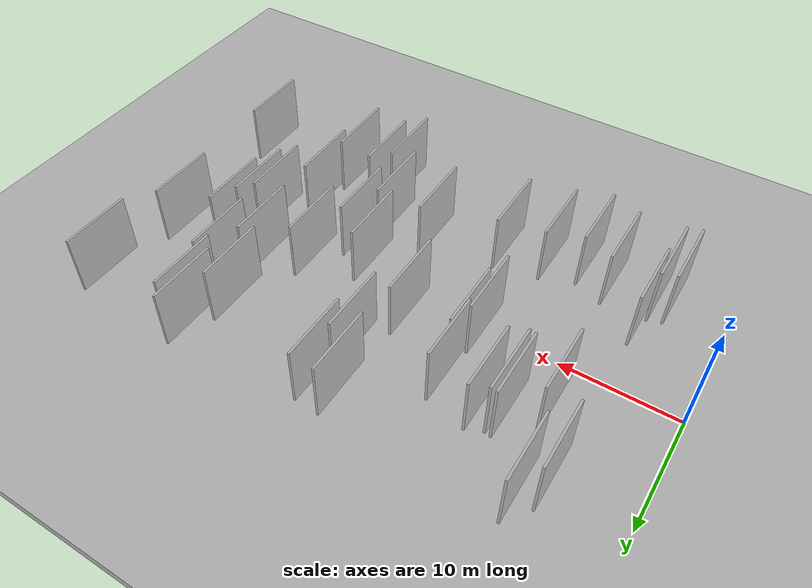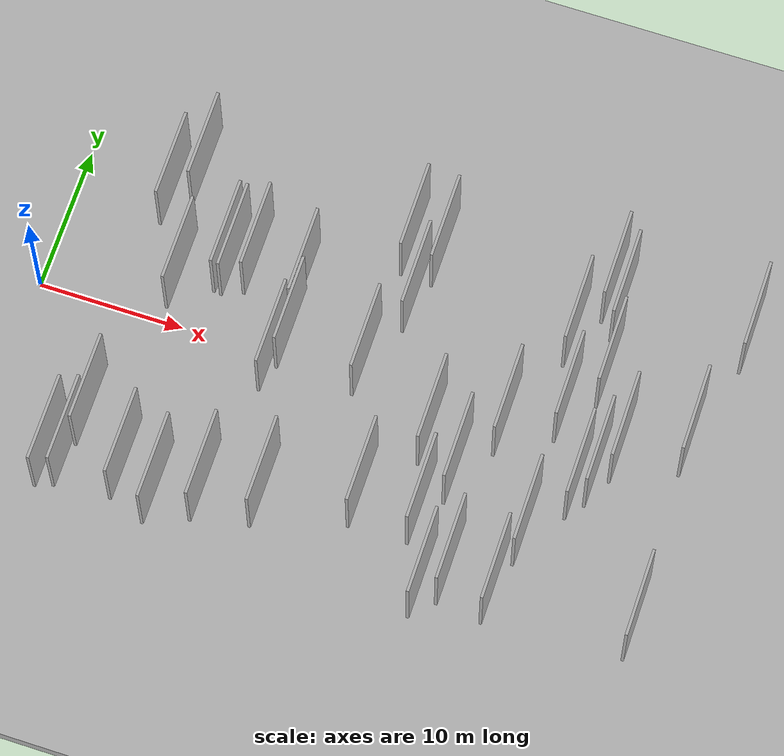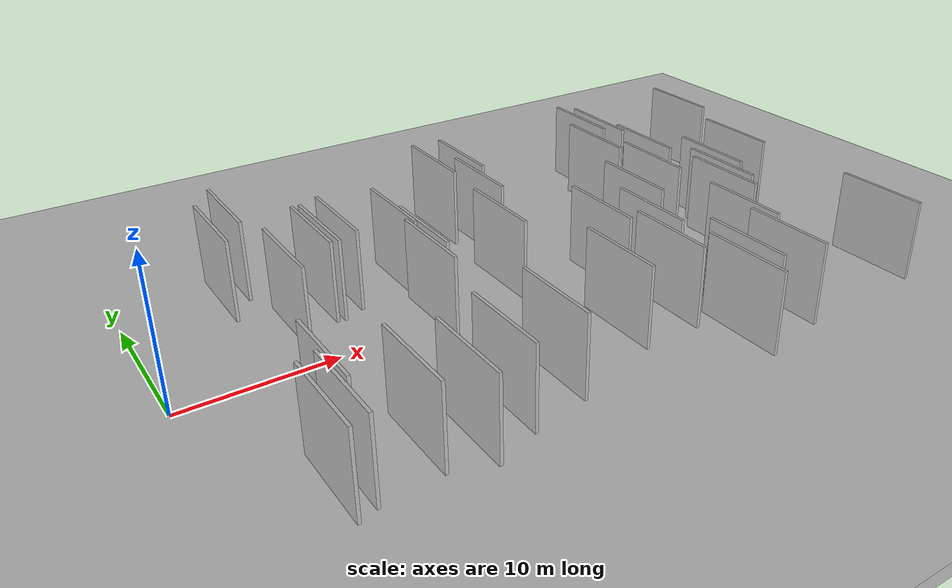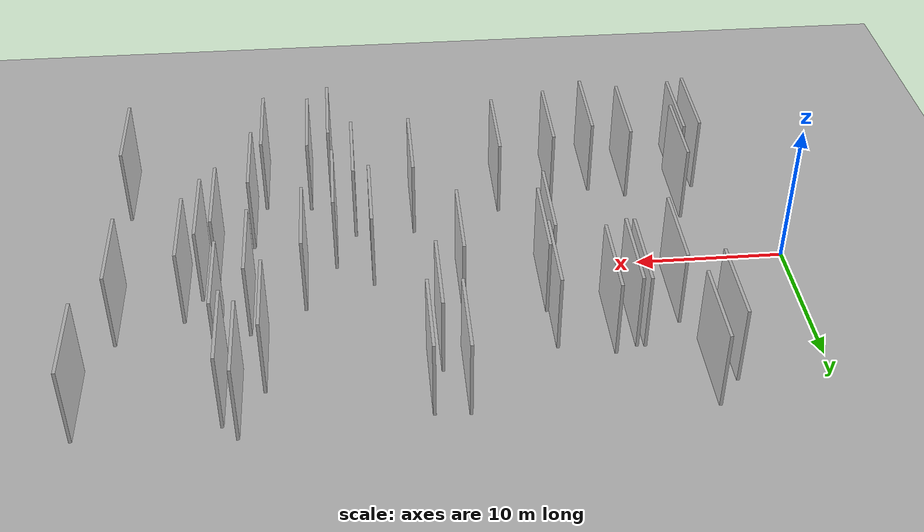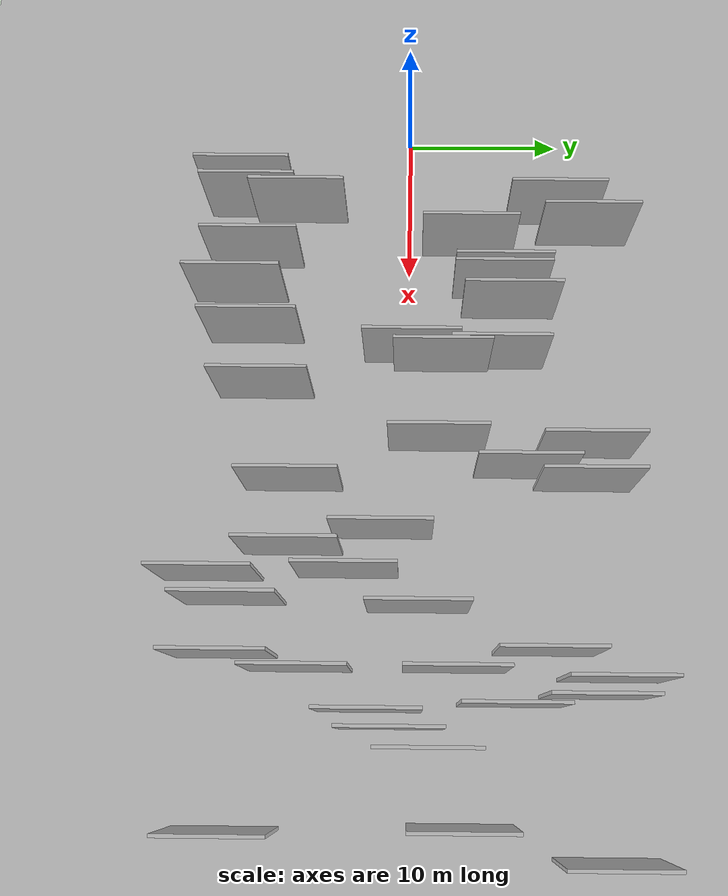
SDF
<?xml version="1.0" encoding="utf-8"?>

<sdf version="1.6">

   <world name="default">

      <gui fullscreen="0">

         <camera name="user_camera">

            <pose>-15 0 4.57585 0 0 0</pose>

            <view_controller>orbit</view_controller>

         </camera>

      </gui>

      <scene>

         <sky>

           <clouds>

             <speed>12</speed>

           </clouds>

         </sky>

         <ambient>0.4 0.4 0.4 1</ambient>

         <background>0.7 0.7 0.7 1</background>

         <shadows>1</shadows>

      </scene>

      <gravity>0 0 -9.8066</gravity>

      <magnetic_field>6e-06 2.3e-05 -4.2e-05</magnetic_field>

      <physics default="0" name="default_physics" type="ode">

         <ode>

            <solver>

               <type>quick</type>

               <iters>10</iters>

               <sor>1.0</sor>

               <use_dynamic_moi_rescaling>0</use_dynamic_moi_rescaling>

            </solver>

            <constraints>

               <cfm>0</cfm>

               <erp>0.2</erp>

               <contact_max_correcting_vel>100</contact_max_correcting_vel>

               <contact_surface_layer>0.001</contact_surface_layer>

            </constraints>

         </ode>

         <max_step_size>0.004</max_step_size>

         <real_time_factor>1</real_time_factor>

         <real_time_update_rate>250</real_time_update_rate>

      </physics>

      <light name="sun" type="directional">

         <cast_shadows>1</cast_shadows>

         <pose>0 0 10 0 0 0</pose>

         <diffuse>0.8 0.8 0.8 1</diffuse>

         <specular>0.2 0.2 0.2 1</specular>

         <attenuation>

            <range>1000</range>

            <constant>0.9</constant>

            <linear>0.01</linear>

            <quadratic>0.001</quadratic>

         </attenuation>

         <direction>-0.5 0.1 -0.9</direction>

      </light>

      <include>

         <name>ground_plane_1</name>

         <uri>model://HANNAS_ground_plane</uri>

         <pose>0 0 0  0 0 0</pose>

      </include>

      <include>

         <name>ground_plane_2</name>

         <uri>model://HANNAS_ground_plane</uri>

         <pose>100 0 0  0 0 0</pose>

      </include>

      <model name="HANNAS_wall_1">

         <static>1</static>

         <pose frame="">44.2414 3.1361 0.0 0.000000 0.000000 1.570796</pose>

         <link name="link">

            <pose frame="">0 0 3.00 0 0 0</pose>

            <collision name="collision">

               <geometry>

                  <box>

                     <size>6.00 0.2 6.00</size>

                  </box>

               </geometry>

               <max_contacts>10</max_contacts>

               <surface>

                  <contact>

                     <ode/>

                  </contact>

                  <bounce/>

                  <friction>

                     <torsional>

                        <ode/>

                     </torsional>

                     <ode/>

                  </friction>

               </surface>

            </collision>

            <visual name="visual">

               <cast_shadows>0</cast_shadows>

               <geometry>

                  <box>

                     <size>6.00 0.2 6.00</size>

                  </box>

               </geometry>

               <material>

                  <script>

                     <uri>model://HANNAS_wall/materials/scripts</uri>

                     <uri>model://HANNAS_wall/materials/textures</uri>

                     <name>vrc/HANNAS_wall</name>

                  </script>

               </material>

            </visual>

            <self_collide>0</self_collide>

            <enable_wind>0</enable_wind>

            <kinematic>0</kinematic>

         </link>

      </model>

      <model name="HANNAS_wall_2">

         <static>1</static>

         <pose frame="">14.9808 -9.7676 0.0 0.000000 0.000000 1.570796</pose>

         <link name="link">

            <pose frame="">0 0 3.00 0 0 0</pose>

            <collision name="collision">

               <geometry>

                  <box>

                     <size>6.00 0.2 6.00</size>

                  </box>

               </geometry>

               <max_contacts>10</max_contacts>

               <surface>

                  <contact>

                     <ode/>

                  </contact>

                  <bounce/>

                  <friction>

                     <torsional>

                        <ode/>

                     </torsional>

                     <ode/>

                  </friction>

               </surface>

            </collision>

            <visual name="visual">

               <cast_shadows>0</cast_shadows>

               <geometry>

                  <box>

                     <size>6.00 0.2 6.00</size>

                  </box>

               </geometry>

               <material>

                  <script>

                     <uri>model://HANNAS_wall/materials/scripts</uri>

                     <uri>model://HANNAS_wall/materials/textures</uri>

                     <name>vrc/HANNAS_wall</name>

                  </script>

               </material>

            </visual>

            <self_collide>0</self_collide>

            <enable_wind>0</enable_wind>

            <kinematic>0</kinematic>

         </link>

      </model>

      <model name="HANNAS_wall_3">

         <static>1</static>

         <pose frame="">11.6981 5.8458 0.0 0.000000 0.000000 1.570796</pose>

         <link name="link">

            <pose frame="">0 0 3.00 0 0 0</pose>

            <collision name="collision">

               <geometry>

                  <box>

                     <size>6.00 0.2 6.00</size>

                  </box>

               </geometry>

               <max_contacts>10</max_contacts>

               <surface>

                  <contact>

                     <ode/>

                  </contact>

                  <bounce/>

                  <friction>

                     <torsional>

                        <ode/>

                     </torsional>

                     <ode/>

                  </friction>

               </surface>

            </collision>

            <visual name="visual">

               <cast_shadows>0</cast_shadows>

               <geometry>

                  <box>

                     <size>6.00 0.2 6.00</size>

                  </box>

               </geometry>

               <material>

                  <script>

                     <uri>model://HANNAS_wall/materials/scripts</uri>

                     <uri>model://HANNAS_wall/materials/textures</uri>

                     <name>vrc/HANNAS_wall</name>

                  </script>

               </material>

            </visual>

            <self_collide>0</self_collide>

            <enable_wind>0</enable_wind>

            <kinematic>0</kinematic>

         </link>

      </model>

      <model name="HANNAS_wall_4">

         <static>1</static>

         <pose frame="">32.3128 0.7063 0.0 0.000000 0.000000 1.570796</pose>

         <link name="link">

            <pose frame="">0 0 3.00 0 0 0</pose>

            <collision name="collision">

               <geometry>

                  <box>

                     <size>6.00 0.2 6.00</size>

                  </box>

               </geometry>

               <max_contacts>10</max_contacts>

               <surface>

                  <contact>

                     <ode/>

                  </contact>

                  <bounce/>

                  <friction>

                     <torsional>

                        <ode/>

                     </torsional>

                     <ode/>

                  </friction>

               </surface>

            </collision>

            <visual name="visual">

               <cast_shadows>0</cast_shadows>

               <geometry>

                  <box>

                     <size>6.00 0.2 6.00</size>

                  </box>

               </geometry>

               <material>

                  <script>

                     <uri>model://HANNAS_wall/materials/scripts</uri>

                     <uri>model://HANNAS_wall/materials/textures</uri>

                     <name>vrc/HANNAS_wall</name>

                  </script>

               </material>

            </visual>

            <self_collide>0</self_collide>

            <enable_wind>0</enable_wind>

            <kinematic>0</kinematic>

         </link>

      </model>

      <model name="HANNAS_wall_5">

         <static>1</static>

         <pose frame="">39.0102 -0.8089 0.0 0.000000 0.000000 1.570796</pose>

         <link name="link">

            <pose frame="">0 0 3.00 0 0 0</pose>

            <collision name="collision">

               <geometry>

                  <box>

                     <size>6.00 0.2 6.00</size>

                  </box>

               </geometry>

               <max_contacts>10</max_contacts>

               <surface>

                  <contact>

                     <ode/>

                  </contact>

                  <bounce/>

                  <friction>

                     <torsional>

                        <ode/>

                     </torsional>

                     <ode/>

                  </friction>

               </surface>

            </collision>

            <visual name="visual">

               <cast_shadows>0</cast_shadows>

               <geometry>

                  <box>

                     <size>6.00 0.2 6.00</size>

                  </box>

               </geometry>

               <material>

                  <script>

                     <uri>model://HANNAS_wall/materials/scripts</uri>

                     <uri>model://HANNAS_wall/materials/textures</uri>

                     <name>vrc/HANNAS_wall</name>

                  </script>

               </material>

            </visual>

            <self_collide>0</self_collide>

            <enable_wind>0</enable_wind>

            <kinematic>0</kinematic>

         </link>

      </model>

      <model name="HANNAS_wall_6">

         <static>1</static>

         <pose frame="">16.8621 2.0941 0.0 0.000000 0.000000 1.570796</pose>

         <link name="link">

            <pose frame="">0 0 3.00 0 0 0</pose>

            <collision name="collision">

               <geometry>

                  <box>

                     <size>6.00 0.2 6.00</size>

                  </box>

               </geometry>

               <max_contacts>10</max_contacts>

               <surface>

                  <contact>

                     <ode/>

                  </contact>

                  <bounce/>

                  <friction>

                     <torsional>

                        <ode/>

                     </torsional>

                     <ode/>

                  </friction>

               </surface>

            </collision>

            <visual name="visual">

               <cast_shadows>0</cast_shadows>

               <geometry>

                  <box>

                     <size>6.00 0.2 6.00</size>

                  </box>

               </geometry>

               <material>

                  <script>

                     <uri>model://HANNAS_wall/materials/scripts</uri>

                     <uri>model://HANNAS_wall/materials/textures</uri>

                     <name>vrc/HANNAS_wall</name>

                  </script>

               </material>

            </visual>

            <self_collide>0</self_collide>

            <enable_wind>0</enable_wind>

            <kinematic>0</kinematic>

         </link>

      </model>

      <model name="HANNAS_wall_7">

         <static>1</static>

         <pose frame="">30.5004 -11.5803 0.0 0.000000 0.000000 1.570796</pose>

         <link name="link">

            <pose frame="">0 0 3.00 0 0 0</pose>

            <collision name="collision">

               <geometry>

                  <box>

                     <size>6.00 0.2 6.00</size>

                  </box>

               </geometry>

               <max_contacts>10</max_contacts>

               <surface>

                  <contact>

                     <ode/>

                  </contact>

                  <bounce/>

                  <friction>

                     <torsional>

                        <ode/>

                     </torsional>

                     <ode/>

                  </friction>

               </surface>

            </collision>

            <visual name="visual">

               <cast_shadows>0</cast_shadows>

               <geometry>

                  <box>

                     <size>6.00 0.2 6.00</size>

                  </box>

               </geometry>

               <material>

                  <script>

                     <uri>model://HANNAS_wall/materials/scripts</uri>

                     <uri>model://HANNAS_wall/materials/textures</uri>

                     <name>vrc/HANNAS_wall</name>

                  </script>

               </material>

            </visual>

            <self_collide>0</self_collide>

            <enable_wind>0</enable_wind>

            <kinematic>0</kinematic>

         </link>

      </model>

      <model name="HANNAS_wall_8">

         <static>1</static>

         <pose frame="">4.5797 -10.6767 0.0 0.000000 0.000000 1.570796</pose>

         <link name="link">

            <pose frame="">0 0 3.00 0 0 0</pose>

            <collision name="collision">

               <geometry>

                  <box>

                     <size>6.00 0.2 6.00</size>

                  </box>

               </geometry>

               <max_contacts>10</max_contacts>

               <surface>

                  <contact>

                     <ode/>

                  </contact>

                  <bounce/>

                  <friction>

                     <torsional>

                        <ode/>

                     </torsional>

                     <ode/>

                  </friction>

               </surface>

            </collision>

            <visual name="visual">

               <cast_shadows>0</cast_shadows>

               <geometry>

                  <box>

                     <size>6.00 0.2 6.00</size>

                  </box>

               </geometry>

               <material>

                  <script>

                     <uri>model://HANNAS_wall/materials/scripts</uri>

                     <uri>model://HANNAS_wall/materials/textures</uri>

                     <name>vrc/HANNAS_wall</name>

                  </script>

               </material>

            </visual>

            <self_collide>0</self_collide>

            <enable_wind>0</enable_wind>

            <kinematic>0</kinematic>

         </link>

      </model>

      <model name="HANNAS_wall_9">

         <static>1</static>

         <pose frame="">5.7513 -10.2870 0.0 0.000000 0.000000 1.570796</pose>

         <link name="link">

            <pose frame="">0 0 3.00 0 0 0</pose>

            <collision name="collision">

               <geometry>

                  <box>

                     <size>6.00 0.2 6.00</size>

                  </box>

               </geometry>

               <max_contacts>10</max_contacts>

               <surface>

                  <contact>

                     <ode/>

                  </contact>

                  <bounce/>

                  <friction>

                     <torsional>

                        <ode/>

                     </torsional>

                     <ode/>

                  </friction>

               </surface>

            </collision>

            <visual name="visual">

               <cast_shadows>0</cast_shadows>

               <geometry>

                  <box>

                     <size>6.00 0.2 6.00</size>

                  </box>

               </geometry>

               <material>

                  <script>

                     <uri>model://HANNAS_wall/materials/scripts</uri>

                     <uri>model://HANNAS_wall/materials/textures</uri>

                     <name>vrc/HANNAS_wall</name>

                  </script>

               </material>

            </visual>

            <self_collide>0</self_collide>

            <enable_wind>0</enable_wind>

            <kinematic>0</kinematic>

         </link>

      </model>

      <model name="HANNAS_wall_10">

         <static>1</static>

         <pose frame="">44.4853 -10.0042 0.0 0.000000 0.000000 1.570796</pose>

         <link name="link">

            <pose frame="">0 0 3.00 0 0 0</pose>

            <collision name="collision">

               <geometry>

                  <box>

                     <size>6.00 0.2 6.00</size>

                  </box>

               </geometry>

               <max_contacts>10</max_contacts>

               <surface>

                  <contact>

                     <ode/>

                  </contact>

                  <bounce/>

                  <friction>

                     <torsional>

                        <ode/>

                     </torsional>

                     <ode/>

                  </friction>

               </surface>

            </collision>

            <visual name="visual">

               <cast_shadows>0</cast_shadows>

               <geometry>

                  <box>

                     <size>6.00 0.2 6.00</size>

                  </box>

               </geometry>

               <material>

                  <script>

                     <uri>model://HANNAS_wall/materials/scripts</uri>

                     <uri>model://HANNAS_wall/materials/textures</uri>

                     <name>vrc/HANNAS_wall</name>

                  </script>

               </material>

            </visual>

            <self_collide>0</self_collide>

            <enable_wind>0</enable_wind>

            <kinematic>0</kinematic>

         </link>

      </model>

      <model name="HANNAS_wall_11">

         <static>1</static>

         <pose frame="">22.5764 10.9487 0.0 0.000000 0.000000 1.570796</pose>

         <link name="link">

            <pose frame="">0 0 3.00 0 0 0</pose>

            <collision name="collision">

               <geometry>

                  <box>

                     <size>6.00 0.2 6.00</size>

                  </box>

               </geometry>

               <max_contacts>10</max_contacts>

               <surface>

                  <contact>

                     <ode/>

                  </contact>

                  <bounce/>

                  <friction>

                     <torsional>

                        <ode/>

                     </torsional>

                     <ode/>

                  </friction>

               </surface>

            </collision>

            <visual name="visual">

               <cast_shadows>0</cast_shadows>

               <geometry>

                  <box>

                     <size>6.00 0.2 6.00</size>

                  </box>

               </geometry>

               <material>

                  <script>

                     <uri>model://HANNAS_wall/materials/scripts</uri>

                     <uri>model://HANNAS_wall/materials/textures</uri>

                     <name>vrc/HANNAS_wall</name>

                  </script>

               </material>

            </visual>

            <self_collide>0</self_collide>

            <enable_wind>0</enable_wind>

            <kinematic>0</kinematic>

         </link>

      </model>

      <model name="HANNAS_wall_12">

         <static>1</static>

         <pose frame="">24.8713 -6.9526 0.0 0.000000 0.000000 1.570796</pose>

         <link name="link">

            <pose frame="">0 0 3.00 0 0 0</pose>

            <collision name="collision">

               <geometry>

                  <box>

                     <size>6.00 0.2 6.00</size>

                  </box>

               </geometry>

               <max_contacts>10</max_contacts>

               <surface>

                  <contact>

                     <ode/>

                  </contact>

                  <bounce/>

                  <friction>

                     <torsional>

                        <ode/>

                     </torsional>

                     <ode/>

                  </friction>

               </surface>

            </collision>

            <visual name="visual">

               <cast_shadows>0</cast_shadows>

               <geometry>

                  <box>

                     <size>6.00 0.2 6.00</size>

                  </box>

               </geometry>

               <material>

                  <script>

                     <uri>model://HANNAS_wall/materials/scripts</uri>

                     <uri>model://HANNAS_wall/materials/textures</uri>

                     <name>vrc/HANNAS_wall</name>

                  </script>

               </material>

            </visual>

            <self_collide>0</self_collide>

            <enable_wind>0</enable_wind>

            <kinematic>0</kinematic>

         </link>

      </model>

      <model name="HANNAS_wall_13">

         <static>1</static>

         <pose frame="">45.9335 11.2779 0.0 0.000000 0.000000 1.570796</pose>

         <link name="link">

            <pose frame="">0 0 3.00 0 0 0</pose>

            <collision name="collision">

               <geometry>

                  <box>

                     <size>6.00 0.2 6.00</size>

                  </box>

               </geometry>

               <max_contacts>10</max_contacts>

               <surface>

                  <contact>

                     <ode/>

                  </contact>

                  <bounce/>

                  <friction>

                     <torsional>

                        <ode/>

                     </torsional>

                     <ode/>

                  </friction>

               </surface>

            </collision>

            <visual name="visual">

               <cast_shadows>0</cast_shadows>

               <geometry>

                  <box>

                     <size>6.00 0.2 6.00</size>

                  </box>

               </geometry>

               <material>

                  <script>

                     <uri>model://HANNAS_wall/materials/scripts</uri>

                     <uri>model://HANNAS_wall/materials/textures</uri>

                     <name>vrc/HANNAS_wall</name>

                  </script>

               </material>

            </visual>

            <self_collide>0</self_collide>

            <enable_wind>0</enable_wind>

            <kinematic>0</kinematic>

         </link>

      </model>

      <model name="HANNAS_wall_14">

         <static>1</static>

         <pose frame="">31.9454 -10.1639 0.0 0.000000 0.000000 1.570796</pose>

         <link name="link">

            <pose frame="">0 0 3.00 0 0 0</pose>

            <collision name="collision">

               <geometry>

                  <box>

                     <size>6.00 0.2 6.00</size>

                  </box>

               </geometry>

               <max_contacts>10</max_contacts>

               <surface>

                  <contact>

                     <ode/>

                  </contact>

                  <bounce/>

                  <friction>

                     <torsional>

                        <ode/>

                     </torsional>

                     <ode/>

                  </friction>

               </surface>

            </collision>

            <visual name="visual">

               <cast_shadows>0</cast_shadows>

               <geometry>

                  <box>

                     <size>6.00 0.2 6.00</size>

                  </box>

               </geometry>

               <material>

                  <script>

                     <uri>model://HANNAS_wall/materials/scripts</uri>

                     <uri>model://HANNAS_wall/materials/textures</uri>

                     <name>vrc/HANNAS_wall</name>

                  </script>

               </material>

            </visual>

            <self_collide>0</self_collide>

            <enable_wind>0</enable_wind>

            <kinematic>0</kinematic>

         </link>

      </model>

      <model name="HANNAS_wall_15">

         <static>1</static>

         <pose frame="">12.1028 -10.9018 0.0 0.000000 0.000000 1.570796</pose>

         <link name="link">

            <pose frame="">0 0 3.00 0 0 0</pose>

            <collision name="collision">

               <geometry>

                  <box>

                     <size>6.00 0.2 6.00</size>

                  </box>

               </geometry>

               <max_contacts>10</max_contacts>

               <surface>

                  <contact>

                     <ode/>

                  </contact>

                  <bounce/>

                  <friction>

                     <torsional>

                        <ode/>

                     </torsional>

                     <ode/>

                  </friction>

               </surface>

            </collision>

            <visual name="visual">

               <cast_shadows>0</cast_shadows>

               <geometry>

                  <box>

                     <size>6.00 0.2 6.00</size>

                  </box>

               </geometry>

               <material>

                  <script>

                     <uri>model://HANNAS_wall/materials/scripts</uri>

                     <uri>model://HANNAS_wall/materials/textures</uri>

                     <name>vrc/HANNAS_wall</name>

                  </script>

               </material>

            </visual>

            <self_collide>0</self_collide>

            <enable_wind>0</enable_wind>

            <kinematic>0</kinematic>

         </link>

      </model>

      <model name="HANNAS_wall_16">

         <static>1</static>

         <pose frame="">24.7455 10.8038 0.0 0.000000 0.000000 1.570796</pose>

         <link name="link">

            <pose frame="">0 0 3.00 0 0 0</pose>

            <collision name="collision">

               <geometry>

                  <box>

                     <size>6.00 0.2 6.00</size>

                  </box>

               </geometry>

               <max_contacts>10</max_contacts>

               <surface>

                  <contact>

                     <ode/>

                  </contact>

                  <bounce/>

                  <friction>

                     <torsional>

                        <ode/>

                     </torsional>

                     <ode/>

                  </friction>

               </surface>

            </collision>

            <visual name="visual">

               <cast_shadows>0</cast_shadows>

               <geometry>

                  <box>

                     <size>6.00 0.2 6.00</size>

                  </box>

               </geometry>

               <material>

                  <script>

                     <uri>model://HANNAS_wall/materials/scripts</uri>

                     <uri>model://HANNAS_wall/materials/textures</uri>

                     <name>vrc/HANNAS_wall</name>

                  </script>

               </material>

            </visual>

            <self_collide>0</self_collide>

            <enable_wind>0</enable_wind>

            <kinematic>0</kinematic>

         </link>

      </model>

      <model name="HANNAS_wall_17">

         <static>1</static>

         <pose frame="">27.8351 -1.4533 0.0 0.000000 0.000000 1.570796</pose>

         <link name="link">

            <pose frame="">0 0 3.00 0 0 0</pose>

            <collision name="collision">

               <geometry>

                  <box>

                     <size>6.00 0.2 6.00</size>

                  </box>

               </geometry>

               <max_contacts>10</max_contacts>

               <surface>

                  <contact>

                     <ode/>

                  </contact>

                  <bounce/>

                  <friction>

                     <torsional>

                        <ode/>

                     </torsional>

                     <ode/>

                  </friction>

               </surface>

            </collision>

            <visual name="visual">

               <cast_shadows>0</cast_shadows>

               <geometry>

                  <box>

                     <size>6.00 0.2 6.00</size>

                  </box>

               </geometry>

               <material>

                  <script>

                     <uri>model://HANNAS_wall/materials/scripts</uri>

                     <uri>model://HANNAS_wall/materials/textures</uri>

                     <name>vrc/HANNAS_wall</name>

                  </script>

               </material>

            </visual>

            <self_collide>0</self_collide>

            <enable_wind>0</enable_wind>

            <kinematic>0</kinematic>

         </link>

      </model>

      <model name="HANNAS_wall_18">

         <static>1</static>

         <pose frame="">28.8862 -6.8509 0.0 0.000000 0.000000 1.570796</pose>

         <link name="link">

            <pose frame="">0 0 3.00 0 0 0</pose>

            <collision name="collision">

               <geometry>

                  <box>

                     <size>6.00 0.2 6.00</size>

                  </box>

               </geometry>

               <max_contacts>10</max_contacts>

               <surface>

                  <contact>

                     <ode/>

                  </contact>

                  <bounce/>

                  <friction>

                     <torsional>

                        <ode/>

                     </torsional>

                     <ode/>

                  </friction>

               </surface>

            </collision>

            <visual name="visual">

               <cast_shadows>0</cast_shadows>

               <geometry>

                  <box>

                     <size>6.00 0.2 6.00</size>

                  </box>

               </geometry>

               <material>

                  <script>

                     <uri>model://HANNAS_wall/materials/scripts</uri>

                     <uri>model://HANNAS_wall/materials/textures</uri>

                     <name>vrc/HANNAS_wall</name>

                  </script>

               </material>

            </visual>

            <self_collide>0</self_collide>

            <enable_wind>0</enable_wind>

            <kinematic>0</kinematic>

         </link>

      </model>

      <model name="HANNAS_wall_19">

         <static>1</static>

         <pose frame="">30.2681 -3.4661 0.0 0.000000 0.000000 1.570796</pose>

         <link name="link">

            <pose frame="">0 0 3.00 0 0 0</pose>

            <collision name="collision">

               <geometry>

                  <box>

                     <size>6.00 0.2 6.00</size>

                  </box>

               </geometry>

               <max_contacts>10</max_contacts>

               <surface>

                  <contact>

                     <ode/>

                  </contact>

                  <bounce/>

                  <friction>

                     <torsional>

                        <ode/>

                     </torsional>

                     <ode/>

                  </friction>

               </surface>

            </collision>

            <visual name="visual">

               <cast_shadows>0</cast_shadows>

               <geometry>

                  <box>

                     <size>6.00 0.2 6.00</size>

                  </box>

               </geometry>

               <material>

                  <script>

                     <uri>model://HANNAS_wall/materials/scripts</uri>

                     <uri>model://HANNAS_wall/materials/textures</uri>

                     <name>vrc/HANNAS_wall</name>

                  </script>

               </material>

            </visual>

            <self_collide>0</self_collide>

            <enable_wind>0</enable_wind>

            <kinematic>0</kinematic>

         </link>

      </model>

      <model name="HANNAS_wall_20">

         <static>1</static>

         <pose frame="">9.5610 -9.9723 0.0 0.000000 0.000000 1.570796</pose>

         <link name="link">

            <pose frame="">0 0 3.00 0 0 0</pose>

            <collision name="collision">

               <geometry>

                  <box>

                     <size>6.00 0.2 6.00</size>

                  </box>

               </geometry>

               <max_contacts>10</max_contacts>

               <surface>

                  <contact>

                     <ode/>

                  </contact>

                  <bounce/>

                  <friction>

                     <torsional>

                        <ode/>

                     </torsional>

                     <ode/>

                  </friction>

               </surface>

            </collision>

            <visual name="visual">

               <cast_shadows>0</cast_shadows>

               <geometry>

                  <box>

                     <size>6.00 0.2 6.00</size>

                  </box>

               </geometry>

               <material>

                  <script>

                     <uri>model://HANNAS_wall/materials/scripts</uri>

                     <uri>model://HANNAS_wall/materials/textures</uri>

                     <name>vrc/HANNAS_wall</name>

                  </script>

               </material>

            </visual>

            <self_collide>0</self_collide>

            <enable_wind>0</enable_wind>

            <kinematic>0</kinematic>

         </link>

      </model>

      <model name="HANNAS_wall_21">

         <static>1</static>

         <pose frame="">34.7684 8.0979 0.0 0.000000 0.000000 1.570796</pose>

         <link name="link">

            <pose frame="">0 0 3.00 0 0 0</pose>

            <collision name="collision">

               <geometry>

                  <box>

                     <size>6.00 0.2 6.00</size>

                  </box>

               </geometry>

               <max_contacts>10</max_contacts>

               <surface>

                  <contact>

                     <ode/>

                  </contact>

                  <bounce/>

                  <friction>

                     <torsional>

                        <ode/>

                     </torsional>

                     <ode/>

                  </friction>

               </surface>

            </collision>

            <visual name="visual">

               <cast_shadows>0</cast_shadows>

               <geometry>

                  <box>

                     <size>6.00 0.2 6.00</size>

                  </box>

               </geometry>

               <material>

                  <script>

                     <uri>model://HANNAS_wall/materials/scripts</uri>

                     <uri>model://HANNAS_wall/materials/textures</uri>

                     <name>vrc/HANNAS_wall</name>

                  </script>

               </material>

            </visual>

            <self_collide>0</self_collide>

            <enable_wind>0</enable_wind>

            <kinematic>0</kinematic>

         </link>

      </model>

      <model name="HANNAS_wall_22">

         <static>1</static>

         <pose frame="">18.8014 -8.9508 0.0 0.000000 0.000000 1.570796</pose>

         <link name="link">

            <pose frame="">0 0 3.00 0 0 0</pose>

            <collision name="collision">

               <geometry>

                  <box>

                     <size>6.00 0.2 6.00</size>

                  </box>

               </geometry>

               <max_contacts>10</max_contacts>

               <surface>

                  <contact>

                     <ode/>

                  </contact>

                  <bounce/>

                  <friction>

                     <torsional>

                        <ode/>

                     </torsional>

                     <ode/>

                  </friction>

               </surface>

            </collision>

            <visual name="visual">

               <cast_shadows>0</cast_shadows>

               <geometry>

                  <box>

                     <size>6.00 0.2 6.00</size>

                  </box>

               </geometry>

               <material>

                  <script>

                     <uri>model://HANNAS_wall/materials/scripts</uri>

                     <uri>model://HANNAS_wall/materials/textures</uri>

                     <name>vrc/HANNAS_wall</name>

                  </script>

               </material>

            </visual>

            <self_collide>0</self_collide>

            <enable_wind>0</enable_wind>

            <kinematic>0</kinematic>

         </link>

      </model>

      <model name="HANNAS_wall_23">

         <static>1</static>

         <pose frame="">6.1531 9.4132 0.0 0.000000 0.000000 1.570796</pose>

         <link name="link">

            <pose frame="">0 0 3.00 0 0 0</pose>

            <collision name="collision">

               <geometry>

                  <box>

                     <size>6.00 0.2 6.00</size>

                  </box>

               </geometry>

               <max_contacts>10</max_contacts>

               <surface>

                  <contact>

                     <ode/>

                  </contact>

                  <bounce/>

                  <friction>

                     <torsional>

                        <ode/>

                     </torsional>

                     <ode/>

                  </friction>

               </surface>

            </collision>

            <visual name="visual">

               <cast_shadows>0</cast_shadows>

               <geometry>

                  <box>

                     <size>6.00 0.2 6.00</size>

                  </box>

               </geometry>

               <material>

                  <script>

                     <uri>model://HANNAS_wall/materials/scripts</uri>

                     <uri>model://HANNAS_wall/materials/textures</uri>

                     <name>vrc/HANNAS_wall</name>

                  </script>

               </material>

            </visual>

            <self_collide>0</self_collide>

            <enable_wind>0</enable_wind>

            <kinematic>0</kinematic>

         </link>

      </model>

      <model name="HANNAS_wall_24">

         <static>1</static>

         <pose frame="">13.0967 6.4128 0.0 0.000000 0.000000 1.570796</pose>

         <link name="link">

            <pose frame="">0 0 3.00 0 0 0</pose>

            <collision name="collision">

               <geometry>

                  <box>

                     <size>6.00 0.2 6.00</size>

                  </box>

               </geometry>

               <max_contacts>10</max_contacts>

               <surface>

                  <contact>

                     <ode/>

                  </contact>

                  <bounce/>

                  <friction>

                     <torsional>

                        <ode/>

                     </torsional>

                     <ode/>

                  </friction>

               </surface>

            </collision>

            <visual name="visual">

               <cast_shadows>0</cast_shadows>

               <geometry>

                  <box>

                     <size>6.00 0.2 6.00</size>

                  </box>

               </geometry>

               <material>

                  <script>

                     <uri>model://HANNAS_wall/materials/scripts</uri>

                     <uri>model://HANNAS_wall/materials/textures</uri>

                     <name>vrc/HANNAS_wall</name>

                  </script>

               </material>

            </visual>

            <self_collide>0</self_collide>

            <enable_wind>0</enable_wind>

            <kinematic>0</kinematic>

         </link>

      </model>

      <model name="HANNAS_wall_25">

         <static>1</static>

         <pose frame="">23.9436 7.1143 0.0 0.000000 0.000000 1.570796</pose>

         <link name="link">

            <pose frame="">0 0 3.00 0 0 0</pose>

            <collision name="collision">

               <geometry>

                  <box>

                     <size>6.00 0.2 6.00</size>

                  </box>

               </geometry>

               <max_contacts>10</max_contacts>

               <surface>

                  <contact>

                     <ode/>

                  </contact>

                  <bounce/>

                  <friction>

                     <torsional>

                        <ode/>

                     </torsional>

                     <ode/>

                  </friction>

               </surface>

            </collision>

            <visual name="visual">

               <cast_shadows>0</cast_shadows>

               <geometry>

                  <box>

                     <size>6.00 0.2 6.00</size>

                  </box>

               </geometry>

               <material>

                  <script>

                     <uri>model://HANNAS_wall/materials/scripts</uri>

                     <uri>model://HANNAS_wall/materials/textures</uri>

                     <name>vrc/HANNAS_wall</name>

                  </script>

               </material>

            </visual>

            <self_collide>0</self_collide>

            <enable_wind>0</enable_wind>

            <kinematic>0</kinematic>

         </link>

      </model>

      <model name="HANNAS_wall_26">

         <static>1</static>

         <pose frame="">16.2700 0.2062 0.0 0.000000 0.000000 1.570796</pose>

         <link name="link">

            <pose frame="">0 0 3.00 0 0 0</pose>

            <collision name="collision">

               <geometry>

                  <box>

                     <size>6.00 0.2 6.00</size>

                  </box>

               </geometry>

               <max_contacts>10</max_contacts>

               <surface>

                  <contact>

                     <ode/>

                  </contact>

                  <bounce/>

                  <friction>

                     <torsional>

                        <ode/>

                     </torsional>

                     <ode/>

                  </friction>

               </surface>

            </collision>

            <visual name="visual">

               <cast_shadows>0</cast_shadows>

               <geometry>

                  <box>

                     <size>6.00 0.2 6.00</size>

                  </box>

               </geometry>

               <material>

                  <script>

                     <uri>model://HANNAS_wall/materials/scripts</uri>

                     <uri>model://HANNAS_wall/materials/textures</uri>

                     <name>vrc/HANNAS_wall</name>

                  </script>

               </material>

            </visual>

            <self_collide>0</self_collide>

            <enable_wind>0</enable_wind>

            <kinematic>0</kinematic>

         </link>

      </model>

      <model name="HANNAS_wall_27">

         <static>1</static>

         <pose frame="">37.7063 6.0075 0.0 0.000000 0.000000 1.570796</pose>

         <link name="link">

            <pose frame="">0 0 3.00 0 0 0</pose>

            <collision name="collision">

               <geometry>

                  <box>

                     <size>6.00 0.2 6.00</size>

                  </box>

               </geometry>

               <max_contacts>10</max_contacts>

               <surface>

                  <contact>

                     <ode/>

                  </contact>

                  <bounce/>

                  <friction>

                     <torsional>

                        <ode/>

                     </torsional>

                     <ode/>

                  </friction>

               </surface>

            </collision>

            <visual name="visual">

               <cast_shadows>0</cast_shadows>

               <geometry>

                  <box>

                     <size>6.00 0.2 6.00</size>

                  </box>

               </geometry>

               <material>

                  <script>

                     <uri>model://HANNAS_wall/materials/scripts</uri>

                     <uri>model://HANNAS_wall/materials/textures</uri>

                     <name>vrc/HANNAS_wall</name>

                  </script>

               </material>

            </visual>

            <self_collide>0</self_collide>

            <enable_wind>0</enable_wind>

            <kinematic>0</kinematic>

         </link>

      </model>

      <model name="HANNAS_wall_28">

         <static>1</static>

         <pose frame="">40.0553 1.2791 0.0 0.000000 0.000000 1.570796</pose>

         <link name="link">

            <pose frame="">0 0 3.00 0 0 0</pose>

            <collision name="collision">

               <geometry>

                  <box>

                     <size>6.00 0.2 6.00</size>

                  </box>

               </geometry>

               <max_contacts>10</max_contacts>

               <surface>

                  <contact>

                     <ode/>

                  </contact>

                  <bounce/>

                  <friction>

                     <torsional>

                        <ode/>

                     </torsional>

                     <ode/>

                  </friction>

               </surface>

            </collision>

            <visual name="visual">

               <cast_shadows>0</cast_shadows>

               <geometry>

                  <box>

                     <size>6.00 0.2 6.00</size>

                  </box>

               </geometry>

               <material>

                  <script>

                     <uri>model://HANNAS_wall/materials/scripts</uri>

                     <uri>model://HANNAS_wall/materials/textures</uri>

                     <name>vrc/HANNAS_wall</name>

                  </script>

               </material>

            </visual>

            <self_collide>0</self_collide>

            <enable_wind>0</enable_wind>

            <kinematic>0</kinematic>

         </link>

      </model>

      <model name="HANNAS_wall_29">

         <static>1</static>

         <pose frame="">37.2126 10.7967 0.0 0.000000 0.000000 1.570796</pose>

         <link name="link">

            <pose frame="">0 0 3.00 0 0 0</pose>

            <collision name="collision">

               <geometry>

                  <box>

                     <size>6.00 0.2 6.00</size>

                  </box>

               </geometry>

               <max_contacts>10</max_contacts>

               <surface>

                  <contact>

                     <ode/>

                  </contact>

                  <bounce/>

                  <friction>

                     <torsional>

                        <ode/>

                     </torsional>

                     <ode/>

                  </friction>

               </surface>

            </collision>

            <visual name="visual">

               <cast_shadows>0</cast_shadows>

               <geometry>

                  <box>

                     <size>6.00 0.2 6.00</size>

                  </box>

               </geometry>

               <material>

                  <script>

                     <uri>model://HANNAS_wall/materials/scripts</uri>

                     <uri>model://HANNAS_wall/materials/textures</uri>

                     <name>vrc/HANNAS_wall</name>

                  </script>

               </material>

            </visual>

            <self_collide>0</self_collide>

            <enable_wind>0</enable_wind>

            <kinematic>0</kinematic>

         </link>

      </model>

      <model name="HANNAS_wall_30">

         <static>1</static>

         <pose frame="">35.0710 -10.5124 0.0 0.000000 0.000000 1.570796</pose>

         <link name="link">

            <pose frame="">0 0 3.00 0 0 0</pose>

            <collision name="collision">

               <geometry>

                  <box>

                     <size>6.00 0.2 6.00</size>

                  </box>

               </geometry>

               <max_contacts>10</max_contacts>

               <surface>

                  <contact>

                     <ode/>

                  </contact>

                  <bounce/>

                  <friction>

                     <torsional>

                        <ode/>

                     </torsional>

                     <ode/>

                  </friction>

               </surface>

            </collision>

            <visual name="visual">

               <cast_shadows>0</cast_shadows>

               <geometry>

                  <box>

                     <size>6.00 0.2 6.00</size>

                  </box>

               </geometry>

               <material>

                  <script>

                     <uri>model://HANNAS_wall/materials/scripts</uri>

                     <uri>model://HANNAS_wall/materials/textures</uri>

                     <name>vrc/HANNAS_wall</name>

                  </script>

               </material>

            </visual>

            <self_collide>0</self_collide>

            <enable_wind>0</enable_wind>

            <kinematic>0</kinematic>

         </link>

      </model>

      <model name="HANNAS_wall_31">

         <static>1</static>

         <pose frame="">11.1851 5.9148 0.0 0.000000 0.000000 1.570796</pose>

         <link name="link">

            <pose frame="">0 0 3.00 0 0 0</pose>

            <collision name="collision">

               <geometry>

                  <box>

                     <size>6.00 0.2 6.00</size>

                  </box>

               </geometry>

               <max_contacts>10</max_contacts>

               <surface>

                  <contact>

                     <ode/>

                  </contact>

                  <bounce/>

                  <friction>

                     <torsional>

                        <ode/>

                     </torsional>

                     <ode/>

                  </friction>

               </surface>

            </collision>

            <visual name="visual">

               <cast_shadows>0</cast_shadows>

               <geometry>

                  <box>

                     <size>6.00 0.2 6.00</size>

                  </box>

               </geometry>

               <material>

                  <script>

                     <uri>model://HANNAS_wall/materials/scripts</uri>

                     <uri>model://HANNAS_wall/materials/textures</uri>

                     <name>vrc/HANNAS_wall</name>

                  </script>

               </material>

            </visual>

            <self_collide>0</self_collide>

            <enable_wind>0</enable_wind>

            <kinematic>0</kinematic>

         </link>

      </model>

      <model name="HANNAS_wall_32">

         <static>1</static>

         <pose frame="">7.6967 11.4417 0.0 0.000000 0.000000 1.570796</pose>

         <link name="link">

            <pose frame="">0 0 3.00 0 0 0</pose>

            <collision name="collision">

               <geometry>

                  <box>

                     <size>6.00 0.2 6.00</size>

                  </box>

               </geometry>

               <max_contacts>10</max_contacts>

               <surface>

                  <contact>

                     <ode/>

                  </contact>

                  <bounce/>

                  <friction>

                     <torsional>

                        <ode/>

                     </torsional>

                     <ode/>

                  </friction>

               </surface>

            </collision>

            <visual name="visual">

               <cast_shadows>0</cast_shadows>

               <geometry>

                  <box>

                     <size>6.00 0.2 6.00</size>

                  </box>

               </geometry>

               <material>

                  <script>

                     <uri>model://HANNAS_wall/materials/scripts</uri>

                     <uri>model://HANNAS_wall/materials/textures</uri>

                     <name>vrc/HANNAS_wall</name>

                  </script>

               </material>

            </visual>

            <self_collide>0</self_collide>

            <enable_wind>0</enable_wind>

            <kinematic>0</kinematic>

         </link>

      </model>

      <model name="HANNAS_wall_33">

         <static>1</static>

         <pose frame="">36.2530 11.8632 0.0 0.000000 0.000000 1.570796</pose>

         <link name="link">

            <pose frame="">0 0 3.00 0 0 0</pose>

            <collision name="collision">

               <geometry>

                  <box>

                     <size>6.00 0.2 6.00</size>

                  </box>

               </geometry>

               <max_contacts>10</max_contacts>

               <surface>

                  <contact>

                     <ode/>

                  </contact>

                  <bounce/>

                  <friction>

                     <torsional>

                        <ode/>

                     </torsional>

                     <ode/>

                  </friction>

               </surface>

            </collision>

            <visual name="visual">

               <cast_shadows>0</cast_shadows>

               <geometry>

                  <box>

                     <size>6.00 0.2 6.00</size>

                  </box>

               </geometry>

               <material>

                  <script>

                     <uri>model://HANNAS_wall/materials/scripts</uri>

                     <uri>model://HANNAS_wall/materials/textures</uri>

                     <name>vrc/HANNAS_wall</name>

                  </script>

               </material>

            </visual>

            <self_collide>0</self_collide>

            <enable_wind>0</enable_wind>

            <kinematic>0</kinematic>

         </link>

      </model>

      <model name="HANNAS_wall_34">

         <static>1</static>

         <pose frame="">16.6427 5.6154 0.0 0.000000 0.000000 1.570796</pose>

         <link name="link">

            <pose frame="">0 0 3.00 0 0 0</pose>

            <collision name="collision">

               <geometry>

                  <box>

                     <size>6.00 0.2 6.00</size>

                  </box>

               </geometry>

               <max_contacts>10</max_contacts>

               <surface>

                  <contact>

                     <ode/>

                  </contact>

                  <bounce/>

                  <friction>

                     <torsional>

                        <ode/>

                     </torsional>

                     <ode/>

                  </friction>

               </surface>

            </collision>

            <visual name="visual">

               <cast_shadows>0</cast_shadows>

               <geometry>

                  <box>

                     <size>6.00 0.2 6.00</size>

                  </box>

               </geometry>

               <material>

                  <script>

                     <uri>model://HANNAS_wall/materials/scripts</uri>

                     <uri>model://HANNAS_wall/materials/textures</uri>

                     <name>vrc/HANNAS_wall</name>

                  </script>

               </material>

            </visual>

            <self_collide>0</self_collide>

            <enable_wind>0</enable_wind>

            <kinematic>0</kinematic>

         </link>

      </model>

      <model name="HANNAS_wall_35">

         <static>1</static>

         <pose frame="">38.0674 -2.0301 0.0 0.000000 0.000000 1.570796</pose>

         <link name="link">

            <pose frame="">0 0 3.00 0 0 0</pose>

            <collision name="collision">

               <geometry>

                  <box>

                     <size>6.00 0.2 6.00</size>

                  </box>

               </geometry>

               <max_contacts>10</max_contacts>

               <surface>

                  <contact>

                     <ode/>

                  </contact>

                  <bounce/>

                  <friction>

                     <torsional>

                        <ode/>

                     </torsional>

                     <ode/>

                  </friction>

               </surface>

            </collision>

            <visual name="visual">

               <cast_shadows>0</cast_shadows>

               <geometry>

                  <box>

                     <size>6.00 0.2 6.00</size>

                  </box>

               </geometry>

               <material>

                  <script>

                     <uri>model://HANNAS_wall/materials/scripts</uri>

                     <uri>model://HANNAS_wall/materials/textures</uri>

                     <name>vrc/HANNAS_wall</name>

                  </script>

               </material>

            </visual>

            <self_collide>0</self_collide>

            <enable_wind>0</enable_wind>

            <kinematic>0</kinematic>

         </link>

      </model>

      <model name="HANNAS_wall_36">

         <static>1</static>

         <pose frame="">22.2059 1.8282 0.0 0.000000 0.000000 1.570796</pose>

         <link name="link">

            <pose frame="">0 0 3.00 0 0 0</pose>

            <collision name="collision">

               <geometry>

                  <box>

                     <size>6.00 0.2 6.00</size>

                  </box>

               </geometry>

               <max_contacts>10</max_contacts>

               <surface>

                  <contact>

                     <ode/>

                  </contact>

                  <bounce/>

                  <friction>

                     <torsional>

                        <ode/>

                     </torsional>

                     <ode/>

                  </friction>

               </surface>

            </collision>

            <visual name="visual">

               <cast_shadows>0</cast_shadows>

               <geometry>

                  <box>

                     <size>6.00 0.2 6.00</size>

                  </box>

               </geometry>

               <material>

                  <script>

                     <uri>model://HANNAS_wall/materials/scripts</uri>

                     <uri>model://HANNAS_wall/materials/textures</uri>

                     <name>vrc/HANNAS_wall</name>

                  </script>

               </material>

            </visual>

            <self_collide>0</self_collide>

            <enable_wind>0</enable_wind>

            <kinematic>0</kinematic>

         </link>

      </model>

      <model name="HANNAS_wall_37">

         <static>1</static>

         <pose frame="">35.7950 2.8546 0.0 0.000000 0.000000 1.570796</pose>

         <link name="link">

            <pose frame="">0 0 3.00 0 0 0</pose>

            <collision name="collision">

               <geometry>

                  <box>

                     <size>6.00 0.2 6.00</size>

                  </box>

               </geometry>

               <max_contacts>10</max_contacts>

               <surface>

                  <contact>

                     <ode/>

                  </contact>

                  <bounce/>

                  <friction>

                     <torsional>

                        <ode/>

                     </torsional>

                     <ode/>

                  </friction>

               </surface>

            </collision>

            <visual name="visual">

               <cast_shadows>0</cast_shadows>

               <geometry>

                  <box>

                     <size>6.00 0.2 6.00</size>

                  </box>

               </geometry>

               <material>

                  <script>

                     <uri>model://HANNAS_wall/materials/scripts</uri>

                     <uri>model://HANNAS_wall/materials/textures</uri>

                     <name>vrc/HANNAS_wall</name>

                  </script>

               </material>

            </visual>

            <self_collide>0</self_collide>

            <enable_wind>0</enable_wind>

            <kinematic>0</kinematic>

         </link>

      </model>

      <model name="HANNAS_wall_38">

         <static>1</static>

         <pose frame="">35.8188 -6.1024 0.0 0.000000 0.000000 1.570796</pose>

         <link name="link">

            <pose frame="">0 0 3.00 0 0 0</pose>

            <collision name="collision">

               <geometry>

                  <box>

                     <size>6.00 0.2 6.00</size>

                  </box>

               </geometry>

               <max_contacts>10</max_contacts>

               <surface>

                  <contact>

                     <ode/>

                  </contact>

                  <bounce/>

                  <friction>

                     <torsional>

                        <ode/>

                     </torsional>

                     <ode/>

                  </friction>

               </surface>

            </collision>

            <visual name="visual">

               <cast_shadows>0</cast_shadows>

               <geometry>

                  <box>

                     <size>6.00 0.2 6.00</size>

                  </box>

               </geometry>

               <material>

                  <script>

                     <uri>model://HANNAS_wall/materials/scripts</uri>

                     <uri>model://HANNAS_wall/materials/textures</uri>

                     <name>vrc/HANNAS_wall</name>

                  </script>

               </material>

            </visual>

            <self_collide>0</self_collide>

            <enable_wind>0</enable_wind>

            <kinematic>0</kinematic>

         </link>

      </model>

      <model name="HANNAS_wall_39">

         <static>1</static>

         <pose frame="">8.5770 3.8557 0.0 0.000000 0.000000 1.570796</pose>

         <link name="link">

            <pose frame="">0 0 3.00 0 0 0</pose>

            <collision name="collision">

               <geometry>

                  <box>

                     <size>6.00 0.2 6.00</size>

                  </box>

               </geometry>

               <max_contacts>10</max_contacts>

               <surface>

                  <contact>

                     <ode/>

                  </contact>

                  <bounce/>

                  <friction>

                     <torsional>

                        <ode/>

                     </torsional>

                     <ode/>

                  </friction>

               </surface>

            </collision>

            <visual name="visual">

               <cast_shadows>0</cast_shadows>

               <geometry>

                  <box>

                     <size>6.00 0.2 6.00</size>

                  </box>

               </geometry>

               <material>

                  <script>

                     <uri>model://HANNAS_wall/materials/scripts</uri>

                     <uri>model://HANNAS_wall/materials/textures</uri>

                     <name>vrc/HANNAS_wall</name>

                  </script>

               </material>

            </visual>

            <self_collide>0</self_collide>

            <enable_wind>0</enable_wind>

            <kinematic>0</kinematic>

         </link>

      </model>

      <model name="HANNAS_wall_40">

         <static>1</static>

         <pose frame="">6.1489 -7.1625 0.0 0.000000 0.000000 1.570796</pose>

         <link name="link">

            <pose frame="">0 0 3.00 0 0 0</pose>

            <collision name="collision">

               <geometry>

                  <box>

                     <size>6.00 0.2 6.00</size>

                  </box>

               </geometry>

               <max_contacts>10</max_contacts>

               <surface>

                  <contact>

                     <ode/>

                  </contact>

                  <bounce/>

                  <friction>

                     <torsional>

                        <ode/>

                     </torsional>

                     <ode/>

                  </friction>

               </surface>

            </collision>

            <visual name="visual">

               <cast_shadows>0</cast_shadows>

               <geometry>

                  <box>

                     <size>6.00 0.2 6.00</size>

                  </box>

               </geometry>

               <material>

                  <script>

                     <uri>model://HANNAS_wall/materials/scripts</uri>

                     <uri>model://HANNAS_wall/materials/textures</uri>

                     <name>vrc/HANNAS_wall</name>

                  </script>

               </material>

            </visual>

            <self_collide>0</self_collide>

            <enable_wind>0</enable_wind>

            <kinematic>0</kinematic>

         </link>

      </model>

   </world>

</sdf>
